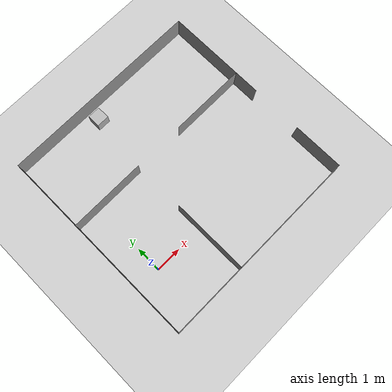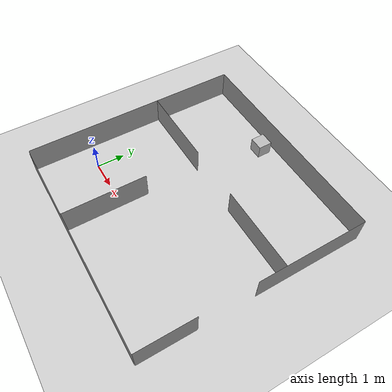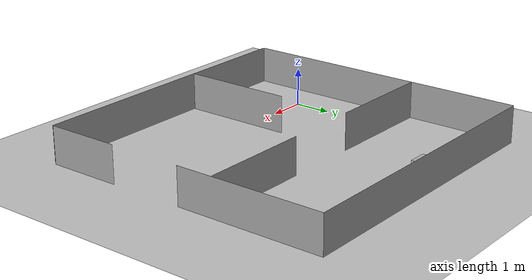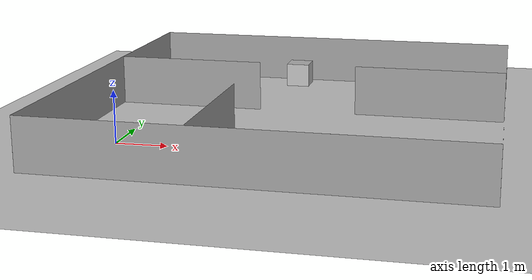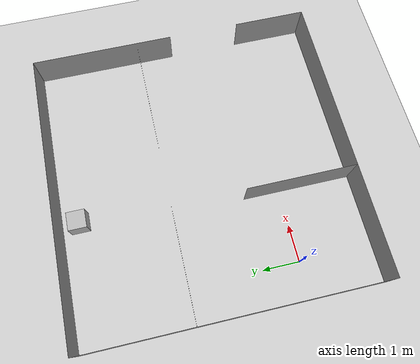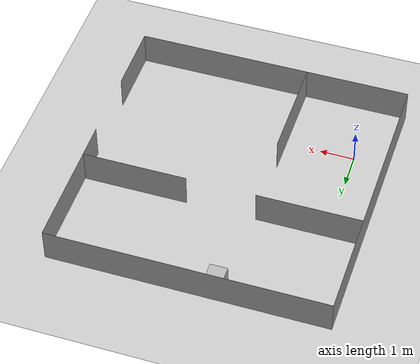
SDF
<sdf version="1.7">
 <world name="default">
  <light name="sun" type="directional">
   <pose>0 0 10 0 -0 0</pose>
   <diffuse>0.8 0.8 0.8 1</diffuse>
   <specular>0.2 0.2 0.2 1</specular>
   <attenuation>
    <range>1000</range>
    <constant>0.9</constant>
    <linear>0.01</linear>
    <quadratic>0.001</quadratic>
   </attenuation>
   <direction>-0.5 0.1 -0.9</direction>
   <spot><inner_angle>0</inner_angle><outer_angle>0</outer_angle><falloff>0</falloff></spot>
  </light>
  <model name="ground_plane">
   <static>1</static>
   <link name="link">
    <collision name="collision">
     <geometry><plane><normal>0 0 1</normal><size>100 100</size></plane></geometry>
     <surface>
      <contact><collide_bitmask>65535</collide_bitmask></contact>
      <friction><ode><mu>100</mu><mu2>50</mu2></ode></friction>
     </surface>
    </collision>
    <visual name="visual">
     <cast_shadows>0</cast_shadows>
     <geometry><plane><normal>0 0 1</normal><size>100 100</size></plane></geometry>
     <material>
      <script><uri>file://media/materials/scripts/gazebo.material</uri><name>Gazebo/Grey</name></script>
     </material>
    </visual>
   </link>
  </model>
  <gravity>0 0 -9.8</gravity>
  <magnetic_field>6e-06 2.3e-05 -4.2e-05</magnetic_field>
  <atmosphere type="adiabatic"/>
  <physics name="default_physics" default="0" type="ode">
   <max_step_size>0.001</max_step_size>
   <real_time_factor>1</real_time_factor>
   <real_time_update_rate>1000</real_time_update_rate>
  </physics>
  <scene><ambient>0.4 0.4 0.4 1</ambient><background>0.7 0.7 0.7 1</background><shadows>1</shadows></scene>
  <audio><device>default</device></audio>
  <spherical_coordinates>
   <surface_model>EARTH_WGS84</surface_model>
   <latitude_deg>0</latitude_deg>
   <longitude_deg>0</longitude_deg>
   <elevation>0</elevation>
   <heading_deg>0</heading_deg>
  </spherical_coordinates>
  <model name="maze">
   <static>1</static>
   <link name="link_0">
    <inertial>
     <mass>0.000800099</mass>
     <inertia>
      <ixx>0.00433387</ixx>
      <ixy>0</ixy>
      <ixz>0</ixz>
      <iyy>6.66749e-05</iyy>
      <iyz>0</iyz>
      <izz>0.00426719</izz>
     </inertia>
    </inertial>
    <pose>-4.37452 0.189099 0 0 -0 0</pose>
    <visual name="visual">
     <geometry><box><size>0.0001 8 1</size></box></geometry>
     <material>
      <lighting>1</lighting>
      <script><uri>file://media/materials/scripts/gazebo.material</uri><name>Gazebo/Grey</name></script>
      <shader type="vertex"><normal_map>__default__</normal_map></shader>
      <ambient>1 1 1 1</ambient>
      <diffuse>0.7 0.7 0.7 1</diffuse>
      <specular>0.01 0.01 0.01 1</specular>
      <emissive>0 0 0 1</emissive>
     </material>
    </visual>
    <collision name="collision">
     <geometry><box><size>0.0001 8 1</size></box></geometry>
     <surface>
      <friction>
       <ode><mu>1</mu><mu2>1</mu2><fdir1>0 0 0</fdir1><slip1>0</slip1><slip2>0</slip2></ode>
       <torsional>
        <coefficient>1</coefficient>
        <patch_radius>0</patch_radius>
        <surface_radius>0</surface_radius>
        <use_patch_radius>1</use_patch_radius>
        <ode><slip>0</slip></ode>
       </torsional>
      </friction>
      <bounce><restitution_coefficient>0</restitution_coefficient><threshold>1e+06</threshold></bounce>
      <contact>
       <collide_without_contact>0</collide_without_contact>
       <collide_without_contact_bitmask>1</collide_without_contact_bitmask>
       <collide_bitmask>1</collide_bitmask>
       <ode>
        <soft_cfm>0</soft_cfm>
        <soft_erp>0.2</soft_erp>
        <kp>1e+13</kp>
        <kd>1</kd>
        <max_vel>0.01</max_vel>
        <min_depth>0</min_depth>
       </ode>
       <bullet>
        <split_impulse>1</split_impulse>
        <split_impulse_penetration_threshold>-0.01</split_impulse_penetration_threshold>
        <soft_cfm>0</soft_cfm>
        <soft_erp>0.2</soft_erp>
        <kp>1e+13</kp>
        <kd>1</kd>
       </bullet>
      </contact>
     </surface>
    </collision>
   </link>
   <link name="link_0_clone">
    <inertial>
     <mass>0.000400044</mass>
     <inertia>
      <ixx>0.000566729</ixx>
      <ixy>0</ixy>
      <ixz>0</ixz>
      <iyy>3.3337e-05</iyy>
      <iyz>0</iyz>
      <izz>0.000533392</izz>
     </inertia>
    </inertial>
    <pose>3.62548 2.1891 0 0 -0 0</pose>
    <visual name="visual">
     <geometry><box><size>0.0001 4 1</size></box></geometry>
     <material>
      <lighting>1</lighting>
      <script><uri>file://media/materials/scripts/gazebo.material</uri><name>Gazebo/Grey</name></script>
      <shader type="vertex"><normal_map>__default__</normal_map></shader>
      <ambient>1 1 1 1</ambient>
      <diffuse>0.7 0.7 0.7 1</diffuse>
      <specular>0.01 0.01 0.01 1</specular>
      <emissive>0 0 0 1</emissive>
     </material>
    </visual>
    <collision name="collision">
     <geometry><box><size>0.0001 4 1</size></box></geometry>
     <surface>
      <friction>
       <ode><mu>1</mu><mu2>1</mu2><fdir1>0 0 0</fdir1><slip1>0</slip1><slip2>0</slip2></ode>
       <torsional>
        <coefficient>1</coefficient>
        <patch_radius>0</patch_radius>
        <surface_radius>0</surface_radius>
        <use_patch_radius>1</use_patch_radius>
        <ode><slip>0</slip></ode>
       </torsional>
      </friction>
      <bounce><restitution_coefficient>0</restitution_coefficient><threshold>1e+06</threshold></bounce>
      <contact>
       <collide_without_contact>0</collide_without_contact>
       <collide_without_contact_bitmask>1</collide_without_contact_bitmask>
       <collide_bitmask>1</collide_bitmask>
       <ode>
        <soft_cfm>0</soft_cfm>
        <soft_erp>0.2</soft_erp>
        <kp>1e+13</kp>
        <kd>1</kd>
        <max_vel>0.01</max_vel>
        <min_depth>0</min_depth>
       </ode>
       <bullet>
        <split_impulse>1</split_impulse>
        <split_impulse_penetration_threshold>-0.01</split_impulse_penetration_threshold>
        <soft_cfm>0</soft_cfm>
        <soft_erp>0.2</soft_erp>
        <kp>1e+13</kp>
        <kd>1</kd>
       </bullet>
      </contact>
     </surface>
    </collision>
   </link>
   <link name="link_0_clone_clone">
    <inertial>
     <mass>0.000300039</mass>
     <inertia>
      <ixx>0.000250032</ixx>
      <ixy>0</ixy>
      <ixz>0</ixz>
      <iyy>2.50033e-05</iyy>
      <iyz>0</iyz>
      <izz>0.000225029</izz>
     </inertia>
    </inertial>
    <pose>-1.37452 -2.31324 0 0 -0 0</pose>
    <visual name="visual">
     <geometry><box><size>0.0001 3 1</size></box></geometry>
     <material>
      <lighting>1</lighting>
      <script><uri>file://media/materials/scripts/gazebo.material</uri><name>Gazebo/Grey</name></script>
      <shader type="vertex"><normal_map>__default__</normal_map></shader>
      <ambient>1 1 1 1</ambient>
      <diffuse>0.7 0.7 0.7 1</diffuse>
      <specular>0.01 0.01 0.01 1</specular>
      <emissive>0 0 0 1</emissive>
     </material>
    </visual>
    <collision name="collision">
     <geometry><box><size>0.0001 3 1</size></box></geometry>
     <surface>
      <friction>
       <ode><mu>1</mu><mu2>1</mu2><fdir1>0 0 0</fdir1><slip1>0</slip1><slip2>0</slip2></ode>
       <torsional>
        <coefficient>1</coefficient>
        <patch_radius>0</patch_radius>
        <surface_radius>0</surface_radius>
        <use_patch_radius>1</use_patch_radius>
        <ode><slip>0</slip></ode>
       </torsional>
      </friction>
      <bounce><restitution_coefficient>0</restitution_coefficient><threshold>1e+06</threshold></bounce>
      <contact>
       <collide_without_contact>0</collide_without_contact>
       <collide_without_contact_bitmask>1</collide_without_contact_bitmask>
       <collide_bitmask>1</collide_bitmask>
       <ode>
        <soft_cfm>0</soft_cfm>
        <soft_erp>0.2</soft_erp>
        <kp>1e+13</kp>
        <kd>1</kd>
        <max_vel>0.01</max_vel>
        <min_depth>0</min_depth>
       </ode>
       <bullet>
        <split_impulse>1</split_impulse>
        <split_impulse_penetration_threshold>-0.01</split_impulse_penetration_threshold>
        <soft_cfm>0</soft_cfm>
        <soft_erp>0.2</soft_erp>
        <kp>1e+13</kp>
        <kd>1</kd>
       </bullet>
      </contact>
     </surface>
    </collision>
   </link>
   <link name="link_0_clone_clone_clone">
    <inertial>
     <mass>0.00020003</mass>
     <inertia>
      <ixx>8.334e-05</ixx>
      <ixy>0</ixy>
      <ixz>0</ixz>
      <iyy>1.667e-05</iyy>
      <iyz>0</iyz>
      <izz>6.668e-05</izz>
     </inertia>
    </inertial>
    <pose>3.62548 -2.8109 0 0 -0 0</pose>
    <visual name="visual">
     <geometry><box><size>0.0001 2 1</size></box></geometry>
     <material>
      <lighting>1</lighting>
      <script><uri>file://media/materials/scripts/gazebo.material</uri><name>Gazebo/Grey</name></script>
      <shader type="vertex"><normal_map>__default__</normal_map></shader>
      <ambient>1 1 1 1</ambient>
      <diffuse>0.7 0.7 0.7 1</diffuse>
      <specular>0.01 0.01 0.01 1</specular>
      <emissive>0 0 0 1</emissive>
     </material>
    </visual>
    <collision name="collision">
     <geometry><box><size>0.0001 2 1</size></box></geometry>
     <surface>
      <friction>
       <ode><mu>1</mu><mu2>1</mu2><fdir1>0 0 0</fdir1><slip1>0</slip1><slip2>0</slip2></ode>
       <torsional>
        <coefficient>1</coefficient>
        <patch_radius>0</patch_radius>
        <surface_radius>0</surface_radius>
        <use_patch_radius>1</use_patch_radius>
        <ode><slip>0</slip></ode>
       </torsional>
      </friction>
      <bounce><restitution_coefficient>0</restitution_coefficient><threshold>1e+06</threshold></bounce>
      <contact>
       <collide_without_contact>0</collide_without_contact>
       <collide_without_contact_bitmask>1</collide_without_contact_bitmask>
       <collide_bitmask>1</collide_bitmask>
       <ode>
        <soft_cfm>0</soft_cfm>
        <soft_erp>0.2</soft_erp>
        <kp>1e+13</kp>
        <kd>1</kd>
        <max_vel>0.01</max_vel>
        <min_depth>0</min_depth>
       </ode>
       <bullet>
        <split_impulse>1</split_impulse>
        <split_impulse_penetration_threshold>-0.01</split_impulse_penetration_threshold>
        <soft_cfm>0</soft_cfm>
        <soft_erp>0.2</soft_erp>
        <kp>1e+13</kp>
        <kd>1</kd>
       </bullet>
      </contact>
     </surface>
    </collision>
   </link>
   <link name="link_1">
    <inertial>
     <mass>0.00080005</mass>
     <inertia>
      <ixx>6.667e-05</ixx>
      <ixy>0</ixy>
      <ixz>0</ixz>
      <iyy>0.0043336</iyy>
      <iyz>0</iyz>
      <izz>0.00426693</izz>
     </inertia>
    </inertial>
    <pose>-0.375223 -3.82136 0 0 -0 0</pose>
    <visual name="visual">
     <geometry><box><size>8 0.0001 1</size></box></geometry>
     <material>
      <lighting>1</lighting>
      <script><uri>file://media/materials/scripts/gazebo.material</uri><name>Gazebo/Grey</name></script>
      <ambient>1 1 1 0</ambient>
      <shader type="vertex"><normal_map>__default__</normal_map></shader>
      <diffuse>0.7 0.7 0.7 1</diffuse>
      <specular>0.01 0.01 0.01 1</specular>
      <emissive>0 0 0 1</emissive>
     </material>
    </visual>
    <collision name="collision">
     <geometry><box><size>8 0.0001 1</size></box></geometry>
     <surface>
      <friction>
       <ode><mu>1</mu><mu2>1</mu2><fdir1>0 0 0</fdir1><slip1>0</slip1><slip2>0</slip2></ode>
       <torsional>
        <coefficient>1</coefficient>
        <patch_radius>0</patch_radius>
        <surface_radius>0</surface_radius>
        <use_patch_radius>1</use_patch_radius>
        <ode><slip>0</slip></ode>
       </torsional>
      </friction>
      <bounce><restitution_coefficient>0</restitution_coefficient><threshold>1e+06</threshold></bounce>
      <contact>
       <collide_without_contact>0</collide_without_contact>
       <collide_without_contact_bitmask>1</collide_without_contact_bitmask>
       <collide_bitmask>1</collide_bitmask>
       <ode>
        <soft_cfm>0</soft_cfm>
        <soft_erp>0.2</soft_erp>
        <kp>1e+13</kp>
        <kd>1</kd>
        <max_vel>0.01</max_vel>
        <min_depth>0</min_depth>
       </ode>
       <bullet>
        <split_impulse>1</split_impulse>
        <split_impulse_penetration_threshold>-0.01</split_impulse_penetration_threshold>
        <soft_cfm>0</soft_cfm>
        <soft_erp>0.2</soft_erp>
        <kp>1e+13</kp>
        <kd>1</kd>
       </bullet>
      </contact>
     </surface>
    </collision>
   </link>
   <link name="link_1_clone">
    <inertial>
     <mass>0.00080005</mass>
     <inertia>
      <ixx>6.667e-05</ixx>
      <ixy>0</ixy>
      <ixz>0</ixz>
      <iyy>0.0043336</iyy>
      <iyz>0</iyz>
      <izz>0.00426693</izz>
     </inertia>
    </inertial>
    <pose>-0.374523 4.1891 0 0 -0 0</pose>
    <visual name="visual">
     <geometry><box><size>8 0.0001 1</size></box></geometry>
     <material>
      <lighting>1</lighting>
      <script><uri>file://media/materials/scripts/gazebo.material</uri><name>Gazebo/Grey</name></script>
      <shader type="vertex"><normal_map>__default__</normal_map></shader>
      <ambient>1 1 1 0</ambient>
      <diffuse>0.7 0.7 0.7 1</diffuse>
      <specular>0.01 0.01 0.01 1</specular>
      <emissive>0 0 0 1</emissive>
     </material>
    </visual>
    <collision name="collision">
     <geometry><box><size>8 0.0001 1</size></box></geometry>
     <surface>
      <friction>
       <ode><mu>1</mu><mu2>1</mu2><fdir1>0 0 0</fdir1><slip1>0</slip1><slip2>0</slip2></ode>
       <torsional>
        <coefficient>1</coefficient>
        <patch_radius>0</patch_radius>
        <surface_radius>0</surface_radius>
        <use_patch_radius>1</use_patch_radius>
        <ode><slip>0</slip></ode>
       </torsional>
      </friction>
      <bounce><restitution_coefficient>0</restitution_coefficient><threshold>1e+06</threshold></bounce>
      <contact>
       <collide_without_contact>0</collide_without_contact>
       <collide_without_contact_bitmask>1</collide_without_contact_bitmask>
       <collide_bitmask>1</collide_bitmask>
       <ode>
        <soft_cfm>0</soft_cfm>
        <soft_erp>0.2</soft_erp>
        <kp>1e+13</kp>
        <kd>1</kd>
        <max_vel>0.01</max_vel>
        <min_depth>0</min_depth>
       </ode>
       <bullet>
        <split_impulse>1</split_impulse>
        <split_impulse_penetration_threshold>-0.01</split_impulse_penetration_threshold>
        <soft_cfm>0</soft_cfm>
        <soft_erp>0.2</soft_erp>
        <kp>1e+13</kp>
        <kd>1</kd>
       </bullet>
      </contact>
     </surface>
    </collision>
   </link>
   <link name="link_1_clone_0">
    <inertial>
     <mass>0.00030002</mass>
     <inertia>
      <ixx>2.5e-05</ixx>
      <ixy>0</ixy>
      <ixz>0</ixz>
      <iyy>0.00025001</iyy>
      <iyz>0</iyz>
      <izz>0.00022501</izz>
     </inertia>
    </inertial>
    <pose>-2.87126 1.1891 0 0 -0 0</pose>
    <visual name="visual">
     <geometry><box><size>3 0.0001 1</size></box></geometry>
     <material>
      <lighting>1</lighting>
      <script><uri>file://media/materials/scripts/gazebo.material</uri><name>Gazebo/Grey</name></script>
      <shader type="vertex"><normal_map>__default__</normal_map></shader>
      <ambient>1 1 1 0</ambient>
      <diffuse>0.7 0.7 0.7 1</diffuse>
      <specular>0.01 0.01 0.01 1</specular>
      <emissive>0 0 0 1</emissive>
     </material>
    </visual>
    <collision name="collision">
     <geometry><box><size>3 0.0001 1</size></box></geometry>
     <surface>
      <friction>
       <ode><mu>1</mu><mu2>1</mu2><fdir1>0 0 0</fdir1><slip1>0</slip1><slip2>0</slip2></ode>
       <torsional>
        <coefficient>1</coefficient>
        <patch_radius>0</patch_radius>
        <surface_radius>0</surface_radius>
        <use_patch_radius>1</use_patch_radius>
        <ode><slip>0</slip></ode>
       </torsional>
      </friction>
      <bounce><restitution_coefficient>0</restitution_coefficient><threshold>1e+06</threshold></bounce>
      <contact>
       <collide_without_contact>0</collide_without_contact>
       <collide_without_contact_bitmask>1</collide_without_contact_bitmask>
       <collide_bitmask>1</collide_bitmask>
       <ode>
        <soft_cfm>0</soft_cfm>
        <soft_erp>0.2</soft_erp>
        <kp>1e+13</kp>
        <kd>1</kd>
        <max_vel>0.01</max_vel>
        <min_depth>0</min_depth>
       </ode>
       <bullet>
        <split_impulse>1</split_impulse>
        <split_impulse_penetration_threshold>-0.01</split_impulse_penetration_threshold>
        <soft_cfm>0</soft_cfm>
        <soft_erp>0.2</soft_erp>
        <kp>1e+13</kp>
        <kd>1</kd>
       </bullet>
      </contact>
     </surface>
    </collision>
   </link>
   <link name="link_1_clone_0_clone">
    <inertial>
     <mass>0.00030002</mass>
     <inertia>
      <ixx>2.5e-05</ixx>
      <ixy>0</ixy>
      <ixz>0</ixz>
      <iyy>0.00025001</iyy>
      <iyz>0</iyz>
      <izz>0.00022501</izz>
     </inertia>
    </inertial>
    <pose>2.1191 1.1891 0 0 -0 0</pose>
    <visual name="visual">
     <geometry><box><size>3 0.0001 1</size></box></geometry>
     <material>
      <lighting>1</lighting>
      <script><uri>file://media/materials/scripts/gazebo.material</uri><name>Gazebo/Grey</name></script>
      <shader type="pixel"><normal_map>__default__</normal_map></shader>
      <ambient>1 1 1 0</ambient>
      <diffuse>0.7 0.7 0.7 1</diffuse>
      <specular>0.01 0.01 0.01 1</specular>
      <emissive>0 0 0 1</emissive>
     </material>
    </visual>
    <collision name="collision">
     <geometry><box><size>3 0.0001 1</size></box></geometry>
     <surface>
      <friction>
       <ode><mu>1</mu><mu2>1</mu2><fdir1>0 0 0</fdir1><slip1>0</slip1><slip2>0</slip2></ode>
       <torsional>
        <coefficient>1</coefficient>
        <patch_radius>0</patch_radius>
        <surface_radius>0</surface_radius>
        <use_patch_radius>1</use_patch_radius>
        <ode><slip>0</slip></ode>
       </torsional>
      </friction>
      <bounce><restitution_coefficient>0</restitution_coefficient><threshold>1e+06</threshold></bounce>
      <contact>
       <collide_without_contact>0</collide_without_contact>
       <collide_without_contact_bitmask>1</collide_without_contact_bitmask>
       <collide_bitmask>1</collide_bitmask>
       <ode>
        <soft_cfm>0</soft_cfm>
        <soft_erp>0.2</soft_erp>
        <kp>1e+13</kp>
        <kd>1</kd>
        <max_vel>0.01</max_vel>
        <min_depth>0</min_depth>
       </ode>
       <bullet>
        <split_impulse>1</split_impulse>
        <split_impulse_penetration_threshold>-0.01</split_impulse_penetration_threshold>
        <soft_cfm>0</soft_cfm>
        <soft_erp>0.2</soft_erp>
        <kp>1e+13</kp>
        <kd>1</kd>
       </bullet>
      </contact>
     </surface>
    </collision>
   </link>
   <static>0</static>
   <pose>3.37452 1.8109 0.5 0 -0 0</pose>
  </model>
  <model name="my_ground_plane_2">
   <static>1</static>
   <link name="link">
    <pose>0 0 0.25 0 -0 0</pose>
    <collision name="collision">
     <geometry><box><size>0.5 0.5 0.5</size></box></geometry>
     <surface><friction><ode><mu>100</mu><mu2>50</mu2></ode></friction></surface>
    </collision>
    <visual name="visual">
     <cast_shadows>0</cast_shadows>
     <geometry><box><size>0.5 0.5 0.5</size></box></geometry>
     <material>
      <script><uri>model://fiducial/materials/scripts/fiducial.material</uri><name>Fiducial/Image</name></script>
     </material>
    </visual>
   </link>
   <pose>2.31593 5.51476 0 0 -0 0</pose>
  </model>
 </world>
</sdf>
